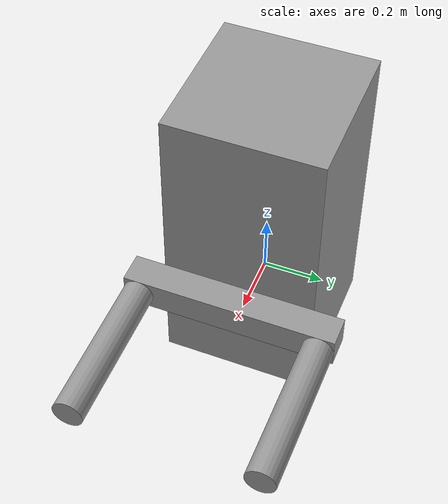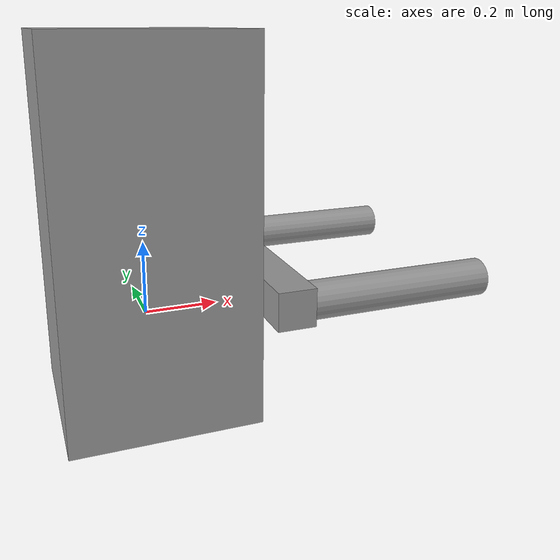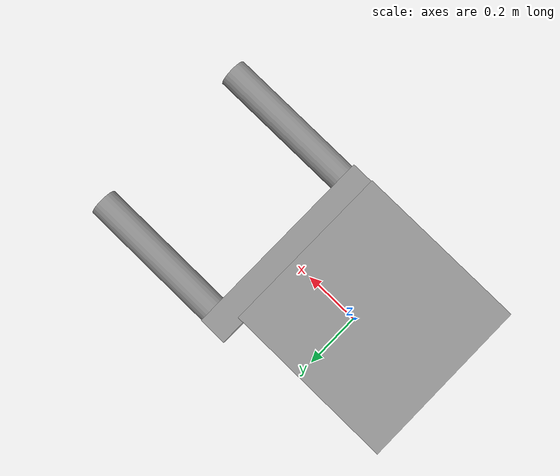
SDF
<?xml version='1.0'?>
<sdf version='1.6'>
  <model name='forklift_freebody'>
    <pose frame=''>0.0 0.0 0.0 0.0 0.0 0.0</pose>
    <plugin name="forklift_gazebo::ForkLiftFreeBodyPlugin" filename="libForkLiftFreeBodyPlugin.so"/>
    <link name='channel_link'>
      <pose frame=''>0 0 0.25 0 -0 0</pose>
      <inertial>
        <mass>50</mass>
        <inertia>
          <ixx>20.8375</ixx>
          <ixy>0</ixy>
          <ixz>0</ixz>
          <iyy>20.8375</iyy>
          <iyz>0</iyz>
          <izz>8.335</izz>
        </inertia>
        <pose frame=''>0 0 0 0 -0 0</pose>
      </inertial>
      <gravity>1</gravity>
      <self_collide>0</self_collide>
      <kinematic>0</kinematic>
      <visual name='visual'>
        <pose frame=''>0 0 0 0 -0 0</pose>
        <geometry>
          <box>
            <size>0.5 0.5 1</size>
          </box>
        </geometry>
        <material>
          <lighting>1</lighting>
          <script>
            <uri>file://media/materials/scripts/gazebo.material</uri>
            <name>Gazebo/Grey</name>
          </script>
          <ambient>0.3 0.3 0.3 1</ambient>
          <diffuse>0.7 0.7 0.7 1</diffuse>
          <specular>0.01 0.01 0.01 1</specular>
          <emissive>0 0 0 1</emissive>
          <shader type='vertex'>
            <normal_map>__default__</normal_map>
          </shader>
        </material>
        <cast_shadows>1</cast_shadows>
        <transparency>0</transparency>
      </visual>
      <collision name='collision'>
        <laser_retro>0</laser_retro>
        <max_contacts>10</max_contacts>
        <pose frame=''>0 0 0 0 -0 0</pose>
        <geometry>
          <box>
            <size>0.5 0.5 1</size>
          </box>
        </geometry>
        <surface>
          <friction>
            <ode>
              <mu>1</mu>
              <mu2>1</mu2>
              <fdir1>0 0 0</fdir1>
              <slip1>0</slip1>
              <slip2>0</slip2>
            </ode>
            <torsional>
              <coefficient>1</coefficient>
              <patch_radius>0</patch_radius>
              <surface_radius>0</surface_radius>
              <use_patch_radius>1</use_patch_radius>
              <ode>
                <slip>0</slip>
              </ode>
            </torsional>
          </friction>
          <bounce>
            <restitution_coefficient>0</restitution_coefficient>
            <threshold>1e+06</threshold>
          </bounce>
          <contact>
            <collide_without_contact>0</collide_without_contact>
            <collide_without_contact_bitmask>1</collide_without_contact_bitmask>
            <collide_bitmask>1</collide_bitmask>
            <ode>
              <soft_cfm>0</soft_cfm>
              <soft_erp>0.2</soft_erp>
              <kp>1e+13</kp>
              <kd>1</kd>
              <max_vel>0.01</max_vel>
              <min_depth>0</min_depth>
            </ode>
            <bullet>
              <split_impulse>1</split_impulse>
              <split_impulse_penetration_threshold>-0.01</split_impulse_penetration_threshold>
              <soft_cfm>0</soft_cfm>
              <soft_erp>0.2</soft_erp>
              <kp>1e+13</kp>
              <kd>1</kd>
            </bullet>
          </contact>
        </surface>
      </collision>
    </link>
    <link name='base_link'>
      <pose frame=''>0.3 0 0.1 0 -0 0</pose>
      <inertial>
        <mass>10</mass>
        <inertia>
          <ixx>3.83</ixx>
          <ixy>0</ixy>
          <ixz>0</ixz>
          <iyy>0.066</iyy>
          <iyz>0</iyz>
          <izz>3.83</izz>
        </inertia>
        <pose frame=''>0 0 0 0 -0 0</pose>
      </inertial>
      <gravity>0</gravity>
      <self_collide>0</self_collide>
      <kinematic>0</kinematic>
      <visual name='visual'>
        <pose frame=''>0 0 0 0 -0 0</pose>
        <geometry>
          <box>
            <size>0.1 0.7 0.1</size>
          </box>
        </geometry>
        <material>
          <lighting>1</lighting>
          <script>
            <uri>file://media/materials/scripts/gazebo.material</uri>
            <name>Gazebo/Grey</name>
          </script>
          <ambient>0.3 0.3 0.3 1</ambient>
          <diffuse>0.7 0.7 0.7 1</diffuse>
          <specular>0.01 0.01 0.01 1</specular>
          <emissive>0 0 0 1</emissive>
          <shader type='vertex'>
            <normal_map>__default__</normal_map>
          </shader>
        </material>
        <cast_shadows>1</cast_shadows>
        <transparency>0</transparency>
      </visual>
      <collision name='collision'>
        <laser_retro>0</laser_retro>
        <max_contacts>10</max_contacts>
        <pose frame=''>0 0 0 0 -0 0</pose>
        <geometry>
          <box>
            <size>0.1 0.7 0.1</size>
          </box>
        </geometry>
        <surface>
          <friction>
            <ode>
              <mu>1</mu>
              <mu2>1</mu2>
              <fdir1>0 0 0</fdir1>
              <slip1>0</slip1>
              <slip2>0</slip2>
            </ode>
            <torsional>
              <coefficient>1</coefficient>
              <patch_radius>0</patch_radius>
              <surface_radius>0</surface_radius>
              <use_patch_radius>1</use_patch_radius>
              <ode>
                <slip>0</slip>
              </ode>
            </torsional>
          </friction>
          <bounce>
            <restitution_coefficient>0</restitution_coefficient>
            <threshold>1e+06</threshold>
          </bounce>
          <contact>
            <collide_without_contact>0</collide_without_contact>
            <collide_without_contact_bitmask>1</collide_without_contact_bitmask>
            <collide_bitmask>1</collide_bitmask>
            <ode>
              <soft_cfm>0</soft_cfm>
              <soft_erp>0.2</soft_erp>
              <kp>1e+13</kp>
              <kd>1</kd>
              <max_vel>0.01</max_vel>
              <min_depth>0</min_depth>
            </ode>
            <bullet>
              <split_impulse>1</split_impulse>
              <split_impulse_penetration_threshold>-0.01</split_impulse_penetration_threshold>
              <soft_cfm>0</soft_cfm>
              <soft_erp>0.2</soft_erp>
              <kp>1e+13</kp>
              <kd>1</kd>
            </bullet>
          </contact>
        </surface>
      </collision>
    </link>
    <link name='fork_left_link'>
      <pose frame=''>0.6 -0.3 0.1 0 1.57 0</pose>
      <inertial>
        <mass>5</mass>
        <inertia>
          <ixx>0.008335</ixx>
          <ixy>0</ixy>
          <ixz>0</ixz>
          <iyy>0.421</iyy>
          <iyz>0</iyz>
          <izz>0.421</izz>
        </inertia>
        <pose frame=''>0 0 0 0 -0 0</pose>
      </inertial>
      <gravity>0</gravity>
      <self_collide>0</self_collide>
      <kinematic>0</kinematic>
      <visual name='visual'>
        <pose frame=''>0 0 0 0 0 0</pose>
        <geometry>
          <cylinder>
            <radius>0.05</radius>
            <length>0.5</length>
          </cylinder>
        </geometry>
        <material>
          <lighting>1</lighting>
          <script>
            <uri>file://media/materials/scripts/gazebo.material</uri>
            <name>Gazebo/Grey</name>
          </script>
          <ambient>0.3 0.3 0.3 1</ambient>
          <diffuse>0.7 0.7 0.7 1</diffuse>
          <specular>0.01 0.01 0.01 1</specular>
          <emissive>0 0 0 1</emissive>
          <shader type='vertex'>
            <normal_map>__default__</normal_map>
          </shader>
        </material>
        <cast_shadows>1</cast_shadows>
        <transparency>0</transparency>
      </visual>
      <collision name='collision'>
        <laser_retro>0</laser_retro>
        <max_contacts>10</max_contacts>
        <pose frame=''>0 0 0 0 0 0</pose>
        <geometry>
          <cylinder>
            <radius>0.05</radius>
            <length>0.5</length>
          </cylinder>
        </geometry>
        <surface>
          <friction>
            <ode>
              <mu>1</mu>
              <mu2>1</mu2>
              <fdir1>0 0 0</fdir1>
              <slip1>0</slip1>
              <slip2>0</slip2>
            </ode>
            <torsional>
              <coefficient>1</coefficient>
              <patch_radius>0</patch_radius>
              <surface_radius>0</surface_radius>
              <use_patch_radius>1</use_patch_radius>
              <ode>
                <slip>0</slip>
              </ode>
            </torsional>
          </friction>
          <bounce>
            <restitution_coefficient>0</restitution_coefficient>
            <threshold>1e+06</threshold>
          </bounce>
          <contact>
            <collide_without_contact>0</collide_without_contact>
            <collide_without_contact_bitmask>1</collide_without_contact_bitmask>
            <collide_bitmask>1</collide_bitmask>
            <ode>
              <soft_cfm>0</soft_cfm>
              <soft_erp>0.2</soft_erp>
              <kp>1e+13</kp>
              <kd>1</kd>
              <max_vel>0.01</max_vel>
              <min_depth>0</min_depth>
            </ode>
            <bullet>
              <split_impulse>1</split_impulse>
              <split_impulse_penetration_threshold>-0.01</split_impulse_penetration_threshold>
              <soft_cfm>0</soft_cfm>
              <soft_erp>0.2</soft_erp>
              <kp>1e+13</kp>
              <kd>1</kd>
            </bullet>
          </contact>
        </surface>
      </collision>
    </link>
    <link name='fork_right_link'>
      <pose frame=''>0.6 0.3 0.1 0 1.57 0</pose>
      <inertial>
        <mass>5</mass>
        <inertia>
          <ixx>0.008335</ixx>
          <ixy>0</ixy>
          <ixz>0</ixz>
          <iyy>0.421</iyy>
          <iyz>0</iyz>
          <izz>0.421</izz>
        </inertia>
        <pose frame=''>0 0 0 0 -0 0</pose>
      </inertial>
      <gravity>0</gravity>
      <self_collide>0</self_collide>
      <kinematic>0</kinematic>
      <visual name='visual'>
        <pose frame=''>0 0 0 0 0 0</pose>
        <geometry>
          <cylinder>
            <radius>0.05</radius>
            <length>0.5</length>
          </cylinder>
        </geometry>
        <material>
          <lighting>1</lighting>
          <script>
            <uri>file://media/materials/scripts/gazebo.material</uri>
            <name>Gazebo/Grey</name>
          </script>
          <ambient>0.3 0.3 0.3 1</ambient>
          <diffuse>0.7 0.7 0.7 1</diffuse>
          <specular>0.01 0.01 0.01 1</specular>
          <emissive>0 0 0 1</emissive>
          <shader type='vertex'>
            <normal_map>__default__</normal_map>
          </shader>
        </material>
        <cast_shadows>1</cast_shadows>
        <transparency>0</transparency>
      </visual>
      <collision name='collision'>
        <laser_retro>0</laser_retro>
        <max_contacts>10</max_contacts>
        <pose frame=''>0 0 0 0 0 0</pose>
        <geometry>
          <cylinder>
            <radius>0.05</radius>
            <length>0.5</length>
          </cylinder>
        </geometry>
        <surface>
          <friction>
            <ode>
              <mu>1</mu>
              <mu2>1</mu2>
              <fdir1>0 0 0</fdir1>
              <slip1>0</slip1>
              <slip2>0</slip2>
            </ode>
            <torsional>
              <coefficient>1</coefficient>
              <patch_radius>0</patch_radius>
              <surface_radius>0</surface_radius>
              <use_patch_radius>1</use_patch_radius>
              <ode>
                <slip>0</slip>
              </ode>
            </torsional>
          </friction>
          <bounce>
            <restitution_coefficient>0</restitution_coefficient>
            <threshold>1e+06</threshold>
          </bounce>
          <contact>
            <collide_without_contact>0</collide_without_contact>
            <collide_without_contact_bitmask>1</collide_without_contact_bitmask>
            <collide_bitmask>1</collide_bitmask>
            <ode>
              <soft_cfm>0</soft_cfm>
              <soft_erp>0.2</soft_erp>
              <kp>1e+13</kp>
              <kd>1</kd>
              <max_vel>0.01</max_vel>
              <min_depth>0</min_depth>
            </ode>
            <bullet>
              <split_impulse>1</split_impulse>
              <split_impulse_penetration_threshold>-0.01</split_impulse_penetration_threshold>
              <soft_cfm>0</soft_cfm>
              <soft_erp>0.2</soft_erp>
              <kp>1e+13</kp>
              <kd>1</kd>
            </bullet>
          </contact>
        </surface>
      </collision>
    </link>
    <joint name='lift' type='prismatic'>
      <parent>channel_link</parent>
      <child>base_link</child>
      <pose frame=''>0 0 0 0 -0 0</pose>
      <axis>
        <xyz>0 0 1</xyz>
        <use_parent_model_frame>0</use_parent_model_frame>
        <limit>
          <lower>0</lower>
          <upper>0.5</upper>
          <effort>-1</effort>
          <velocity>-1</velocity>
        </limit>
        <dynamics>
          <spring_reference>0</spring_reference>
          <spring_stiffness>0</spring_stiffness>
          <damping>0</damping>
          <friction>0</friction>
        </dynamics>
      </axis>
      <physics>
        <ode>
          <limit>
            <cfm>0</cfm>
            <erp>0.2</erp>
          </limit>
          <suspension>
            <cfm>0</cfm>
            <erp>0.2</erp>
          </suspension>
        </ode>
      </physics>
    </joint>
    <joint name='shift_left' type='prismatic'>
      <parent>base_link</parent>
      <child>fork_left_link</child>
      <pose frame=''>0 0 -0.25 0 -0 0</pose>
      <axis>
        <xyz>0 1 0</xyz>
        <use_parent_model_frame>0</use_parent_model_frame>
        <limit>
          <lower>-0.1</lower>
          <upper>0.15</upper>
          <effort>-1</effort>
          <velocity>-1</velocity>
        </limit>
        <dynamics>
          <spring_reference>0</spring_reference>
          <spring_stiffness>0</spring_stiffness>
          <damping>0</damping>
          <friction>0</friction>
        </dynamics>
      </axis>
      <physics>
        <ode>
          <limit>
            <cfm>0</cfm>
            <erp>0.2</erp>
          </limit>
          <suspension>
            <cfm>0</cfm>
            <erp>0.2</erp>
          </suspension>
        </ode>
      </physics>
    </joint>
    <joint name='shift_right' type='prismatic'>
      <parent>base_link</parent>
      <child>fork_right_link</child>
      <pose frame=''>0 0 -0.25 0 -0 0</pose>
      <axis>
        <xyz>0 -1 0</xyz>
        <use_parent_model_frame>0</use_parent_model_frame>
        <limit>
          <lower>-0.1</lower>
          <upper>0.15</upper>
          <effort>-1</effort>
          <velocity>-1</velocity>
        </limit>
        <dynamics>
          <spring_reference>0</spring_reference>
          <spring_stiffness>0</spring_stiffness>
          <damping>0</damping>
          <friction>0</friction>
        </dynamics>
      </axis>
      <physics>
        <ode>
          <limit>
            <cfm>0</cfm>
            <erp>0.2</erp>
          </limit>
          <suspension>
            <cfm>0</cfm>
            <erp>0.2</erp>
          </suspension>
        </ode>
      </physics>
    </joint>
    <static>0</static>
    <allow_auto_disable>1</allow_auto_disable>
  </model>
</sdf>
